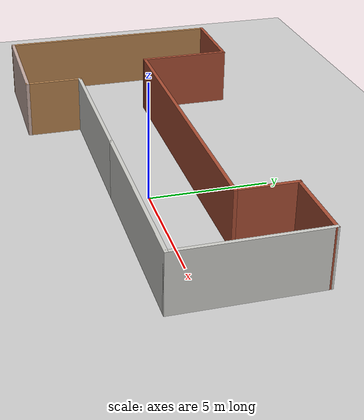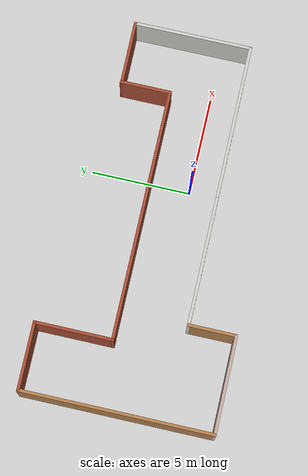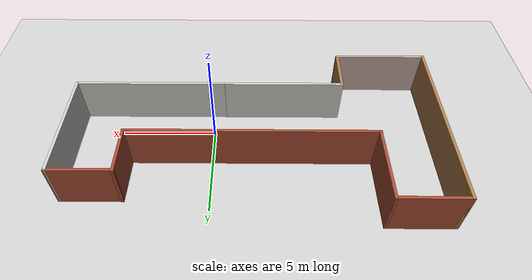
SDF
<?xml version="1.0" ?>
<sdf version="1.4">
  <!-- We use a custom world for the rrbot so that the camera angle is launched correctly -->

  <world name="default">

    <include>
      <uri>model://ground_plane</uri>
    </include>

    <!-- Global light source -->
    <include>
      <uri>model://sun</uri>
    </include>

    <!-- Focus camera on tall pendulum -->
    <gui fullscreen='0'>
      <camera name='user_camera'>
        <pose>4.927360 -4.376610 3.740080 0.000000 0.275643 2.356190</pose>
        <view_controller>orbit</view_controller>
      </camera>
    </gui>

  <model name='my_world'>
    <pose frame=''>-2.16618 1.06063 0 0 -0 0</pose>
    <link name='Wall_10'>
      <collision name='Wall_10_Collision'>
        <geometry>
          <box>
            <size>5 0.15 2.5</size>
          </box>
        </geometry>
        <pose frame=''>0 0 1.25 0 -0 0</pose>
      </collision>
      <visual name='Wall_10_Visual'>
        <pose frame=''>0 0 1.25 0 -0 0</pose>
        <geometry>
          <box>
            <size>5 0.15 2.5</size>
          </box>
        </geometry>
        <material>
          <script>
            <uri>file://media/materials/scripts/gazebo.material</uri>
            <name>Gazebo/Grey</name>
          </script>
          <ambient>0.760784 0.662745 0.627451 1</ambient>
        </material>
        <meta>
          <layer>0</layer>
        </meta>
      </visual>
      <pose frame=''>-7.10015 -4.8 0 0 -0 3.14159</pose>
    </link>
    <link name='Wall_11'>
      <collision name='Wall_11_Collision'>
        <geometry>
          <box>
            <size>9.75 0.15 2.5</size>
          </box>
        </geometry>
        <pose frame=''>0 0 1.25 0 -0 0</pose>
      </collision>
      <visual name='Wall_11_Visual'>
        <pose frame=''>0 0 1.25 0 -0 0</pose>
        <geometry>
          <box>
            <size>9.75 0.15 2.5</size>
          </box>
        </geometry>
        <material>
          <script>
            <uri>file://media/materials/scripts/gazebo.material</uri>
            <name>Gazebo/Wood</name>
          </script>
          <ambient>0.996078 0.47451 0.0196078 1</ambient>
        </material>
        <meta>
          <layer>0</layer>
        </meta>
      </visual>
      <pose frame=''>-9.52515 0 0 0 -0 1.5708</pose>
    </link>
    <link name='Wall_12'>
      <collision name='Wall_12_Collision'>
        <geometry>
          <box>
            <size>3.5 0.15 2.5</size>
          </box>
        </geometry>
        <pose frame=''>0 0 1.25 0 -0 0</pose>
      </collision>
      <visual name='Wall_12_Visual'>
        <pose frame=''>0 0 1.25 0 -0 0</pose>
        <geometry>
          <box>
            <size>3.5 0.15 2.5</size>
          </box>
        </geometry>
        <material>
          <script>
            <uri>file://media/materials/scripts/gazebo.material</uri>
            <name>Gazebo/Bricks</name>
          </script>
          <ambient>1 1 1 1</ambient>
        </material>
        <meta>
          <layer>0</layer>
        </meta>
      </visual>
      <pose frame=''>-7.85015 4.8 0 0 -0 0</pose>
    </link>
    <link name='Wall_2'>
      <collision name='Wall_2_Collision'>
        <geometry>
          <box>
            <size>8 0.15 2.5</size>
          </box>
        </geometry>
        <pose frame=''>0 0 1.25 0 -0 0</pose>
      </collision>
      <visual name='Wall_2_Visual'>
        <pose frame=''>0 0 1.25 0 -0 0</pose>
        <geometry>
          <box>
            <size>8 0.15 2.5</size>
          </box>
        </geometry>
        <material>
          <script>
            <uri>file://media/materials/scripts/gazebo.material</uri>
            <name>Gazebo/CeilingTiled</name>
          </script>
          <ambient>0.760784 0.662745 0.627451 1</ambient>
        </material>
        <meta>
          <layer>0</layer>
        </meta>
      </visual>
      <pose frame=''>5.59985 -2.45 0 0 -0 0</pose>
    </link>
    <link name='Wall_21'>
      <collision name='Wall_21_Collision'>
        <geometry>
          <box>
            <size>4 0.15 2.5</size>
          </box>
        </geometry>
        <pose frame=''>0 0 1.25 0 -0 0</pose>
      </collision>
      <visual name='Wall_21_Visual'>
        <pose frame=''>0 0 1.25 0 -0 0</pose>
        <geometry>
          <box>
            <size>4 0.15 2.5</size>
          </box>
        </geometry>
        <material>
          <script>
            <uri>file://media/materials/scripts/gazebo.material</uri>
            <name>Gazebo/Bricks</name>
          </script>
          <ambient>1 1 1 1</ambient>
        </material>
        <meta>
          <layer>0</layer>
        </meta>
      </visual>
      <pose frame=''>-6.17515 2.875 0 0 -0 -1.5708</pose>
    </link>
    <link name='Wall_22'>
      <collision name='Wall_22_Collision'>
        <geometry>
          <box>
            <size>12.7509 0.15 2.5</size>
          </box>
        </geometry>
        <pose frame=''>0 0 1.25 0 -0 0</pose>
      </collision>
      <visual name='Wall_22_Visual'>
        <pose frame=''>0 0 1.25 0 -0 0</pose>
        <geometry>
          <box>
            <size>12.7509 0.15 2.5</size>
          </box>
        </geometry>
        <material>
          <script>
            <uri>file://media/materials/scripts/gazebo.material</uri>
            <name>Gazebo/Bricks</name>
          </script>
          <ambient>1 1 1 1</ambient>
        </material>
        <meta>
          <layer>0</layer>
        </meta>
      </visual>
      <pose frame=''>0.124846 0.95 0 0 -0 0</pose>
    </link>
    <link name='Wall_3'>
      <collision name='Wall_3_Collision'>
        <geometry>
          <box>
            <size>6 0.15 2.5</size>
          </box>
        </geometry>
        <pose frame=''>0 0 1.25 0 -0 0</pose>
      </collision>
      <visual name='Wall_3_Visual'>
        <pose frame=''>0 0 1.25 0 -0 0</pose>
        <geometry>
          <box>
            <size>6 0.15 2.5</size>
          </box>
        </geometry>
        <material>
          <script>
            <uri>file://media/materials/scripts/gazebo.material</uri>
            <name>Gazebo/CeilingTiled</name>
          </script>
          <ambient>1 1 1 1</ambient>
        </material>
        <meta>
          <layer>0</layer>
        </meta>
      </visual>
      <pose frame=''>9.52485 0.475 0 0 -0 1.5708</pose>
    </link>
    <link name='Wall_4'>
      <collision name='Wall_4_Collision'>
        <geometry>
          <box>
            <size>3.25 0.15 2.5</size>
          </box>
        </geometry>
        <pose frame=''>0 0 1.25 0 -0 0</pose>
      </collision>
      <visual name='Wall_4_Visual'>
        <pose frame=''>0 0 1.25 0 -0 0</pose>
        <geometry>
          <box>
            <size>3.25 0.15 2.5</size>
          </box>
        </geometry>
        <material>
          <script>
            <uri>file://media/materials/scripts/gazebo.material</uri>
            <name>Gazebo/Bricks</name>
          </script>
          <ambient>1 1 1 1</ambient>
        </material>
        <meta>
          <layer>0</layer>
        </meta>
      </visual>
      <pose frame=''>7.97485 3.39335 0 0 -0 -3.1373</pose>
    </link>
    <link name='Wall_5'>
      <collision name='Wall_5_Collision'>
        <geometry>
          <box>
            <size>2.5 0.15 2.5</size>
          </box>
        </geometry>
        <pose frame=''>0 0 1.25 0 -0 0</pose>
      </collision>
      <visual name='Wall_5_Visual'>
        <pose frame=''>0 0 1.25 0 -0 0</pose>
        <geometry>
          <box>
            <size>2.5 0.15 2.5</size>
          </box>
        </geometry>
        <material>
          <script>
            <uri>file://media/materials/scripts/gazebo.material</uri>
            <name>Gazebo/Bricks</name>
          </script>
          <ambient>1 1 1 1</ambient>
        </material>
        <meta>
          <layer>0</layer>
        </meta>
      </visual>
      <pose frame=''>6.42485 2.225 0 0 -0 -1.5708</pose>
    </link>
    <link name='Wall_8'>
      <collision name='Wall_8_Collision'>
        <geometry>
          <box>
            <size>6.5 0.15 2.5</size>
          </box>
        </geometry>
        <pose frame=''>0 0 1.25 0 -0 0</pose>
      </collision>
      <visual name='Wall_8_Visual'>
        <pose frame=''>0 0 1.25 0 -0 0</pose>
        <geometry>
          <box>
            <size>6.5 0.15 2.5</size>
          </box>
        </geometry>
        <material>
          <script>
            <uri>file://media/materials/scripts/gazebo.material</uri>
            <name>Gazebo/CeilingTiled</name>
          </script>
          <ambient>0.996078 0.47451 0.0196078 1</ambient>
        </material>
        <meta>
          <layer>0</layer>
        </meta>
      </visual>
      <pose frame=''>-1.50015 -2.45 0 0 -0 3.14159</pose>
    </link>
    <link name='Wall_9'>
      <collision name='Wall_9_Collision'>
        <geometry>
          <box>
            <size>2.5 0.15 2.5</size>
          </box>
        </geometry>
        <pose frame=''>0 0 1.25 0 -0 0</pose>
      </collision>
      <visual name='Wall_9_Visual'>
        <pose frame=''>0 0 1.25 0 -0 0</pose>
        <geometry>
          <box>
            <size>2.5 0.15 2.5</size>
          </box>
        </geometry>
        <material>
          <script>
            <uri>file://media/materials/scripts/gazebo.material</uri>
            <name>Gazebo/Wood</name>
          </script>
          <ambient>1 1 1 1</ambient>
        </material>
        <meta>
          <layer>0</layer>
        </meta>
      </visual>
      <pose frame=''>-4.67515 -3.625 0 0 -0 -1.5708</pose>
    </link>
    <static>1</static>
  </model>

  </world>
</sdf>
